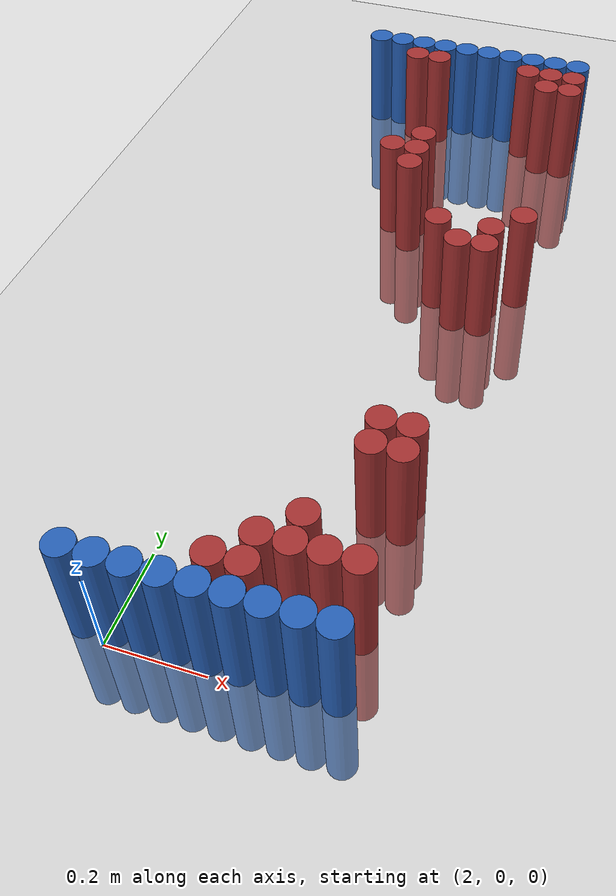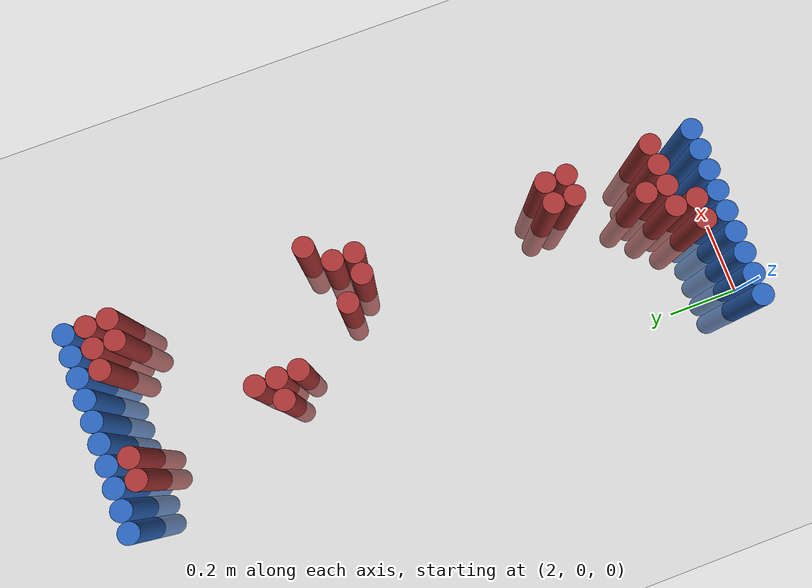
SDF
<sdf version="1.6">
 <world name="default">
  <model name="ground_plane">
   <static>1</static>
   <link name="link">
    <collision name="collision">
     <geometry><plane><normal>0 0 1</normal><size>100 100</size></plane></geometry>
     <surface><friction><ode><mu>100</mu><mu2>50</mu2></ode></friction></surface>
    </collision>
    <visual name="visual">
     <cast_shadows>0</cast_shadows>
     <geometry><plane><normal>0 0 1</normal><size>100 100</size></plane></geometry>
     <material>
      <script><uri>file://media/materials/scripts/gazebo.material</uri><name>Gazebo/Grey</name></script>
     </material>
    </visual>
   </link>
  </model>
  <model name="unit_cylinder_91">
   <static>1</static>
   <pose>1.950000 0.030000 0.000000 0.000000 0.000000 0.000000</pose>
   <link name="link">
    <inertial>
     <mass>1</mass>
     <inertia><ixx>0.145833</ixx><ixy>0</ixy><ixz>0</ixz><iyy>0.145833</iyy><iyz>0</iyz><izz>0.125</izz></inertia>
    </inertial>
    <collision name="collision">
     <geometry><cylinder><radius>0.030000</radius><length>0.5</length></cylinder></geometry>
    </collision>
    <visual name="visual">
     <geometry><cylinder><radius>0.030000</radius><length>0.5</length></cylinder></geometry>
     <material>
      <ambient>0.152000 0.379000 0.720000 1</ambient>
      <diffuse>0.152000 0.379000 0.720000 1</diffuse>
     </material>
     <material>
      <script><name>Gazebo/Grey</name><uri>file://media/materials/scripts/gazebo.material</uri></script>
     </material>
    </visual>
   </link>
  </model>
  <model name="unit_cylinder_92">
   <static>1</static>
   <pose>1.950000 1.770000 0.000000 0.000000 0.000000 0.000000</pose>
   <link name="link">
    <inertial>
     <mass>1</mass>
     <inertia><ixx>0.145833</ixx><ixy>0</ixy><ixz>0</ixz><iyy>0.145833</iyy><iyz>0</iyz><izz>0.125</izz></inertia>
    </inertial>
    <collision name="collision">
     <geometry><cylinder><radius>0.030000</radius><length>0.5</length></cylinder></geometry>
    </collision>
    <visual name="visual">
     <geometry><cylinder><radius>0.030000</radius><length>0.5</length></cylinder></geometry>
     <material>
      <ambient>0.152000 0.379000 0.720000 1</ambient>
      <diffuse>0.152000 0.379000 0.720000 1</diffuse>
     </material>
     <material>
      <script><name>Gazebo/Grey</name><uri>file://media/materials/scripts/gazebo.material</uri></script>
     </material>
    </visual>
   </link>
  </model>
  <model name="unit_cylinder_93">
   <static>1</static>
   <pose>2.010000 0.030000 0.000000 0.000000 0.000000 0.000000</pose>
   <link name="link">
    <inertial>
     <mass>1</mass>
     <inertia><ixx>0.145833</ixx><ixy>0</ixy><ixz>0</ixz><iyy>0.145833</iyy><iyz>0</iyz><izz>0.125</izz></inertia>
    </inertial>
    <collision name="collision">
     <geometry><cylinder><radius>0.030000</radius><length>0.5</length></cylinder></geometry>
    </collision>
    <visual name="visual">
     <geometry><cylinder><radius>0.030000</radius><length>0.5</length></cylinder></geometry>
     <material>
      <ambient>0.152000 0.379000 0.720000 1</ambient>
      <diffuse>0.152000 0.379000 0.720000 1</diffuse>
     </material>
     <material>
      <script><name>Gazebo/Grey</name><uri>file://media/materials/scripts/gazebo.material</uri></script>
     </material>
    </visual>
   </link>
  </model>
  <model name="unit_cylinder_94">
   <static>1</static>
   <pose>2.010000 1.770000 0.000000 0.000000 0.000000 0.000000</pose>
   <link name="link">
    <inertial>
     <mass>1</mass>
     <inertia><ixx>0.145833</ixx><ixy>0</ixy><ixz>0</ixz><iyy>0.145833</iyy><iyz>0</iyz><izz>0.125</izz></inertia>
    </inertial>
    <collision name="collision">
     <geometry><cylinder><radius>0.030000</radius><length>0.5</length></cylinder></geometry>
    </collision>
    <visual name="visual">
     <geometry><cylinder><radius>0.030000</radius><length>0.5</length></cylinder></geometry>
     <material>
      <ambient>0.152000 0.379000 0.720000 1</ambient>
      <diffuse>0.152000 0.379000 0.720000 1</diffuse>
     </material>
     <material>
      <script><name>Gazebo/Grey</name><uri>file://media/materials/scripts/gazebo.material</uri></script>
     </material>
    </visual>
   </link>
  </model>
  <model name="unit_cylinder_95">
   <static>1</static>
   <pose>2.070000 1.770000 0.000000 0.000000 0.000000 0.000000</pose>
   <link name="link">
    <inertial>
     <mass>1</mass>
     <inertia><ixx>0.145833</ixx><ixy>0</ixy><ixz>0</ixz><iyy>0.145833</iyy><iyz>0</iyz><izz>0.125</izz></inertia>
    </inertial>
    <collision name="collision">
     <geometry><cylinder><radius>0.030000</radius><length>0.5</length></cylinder></geometry>
    </collision>
    <visual name="visual">
     <geometry><cylinder><radius>0.030000</radius><length>0.5</length></cylinder></geometry>
     <material>
      <ambient>0.152000 0.379000 0.720000 1</ambient>
      <diffuse>0.152000 0.379000 0.720000 1</diffuse>
     </material>
     <material>
      <script><name>Gazebo/Grey</name><uri>file://media/materials/scripts/gazebo.material</uri></script>
     </material>
    </visual>
   </link>
  </model>
  <model name="unit_cylinder_96">
   <static>1</static>
   <pose>2.130000 1.770000 0.000000 0.000000 0.000000 0.000000</pose>
   <link name="link">
    <inertial>
     <mass>1</mass>
     <inertia><ixx>0.145833</ixx><ixy>0</ixy><ixz>0</ixz><iyy>0.145833</iyy><iyz>0</iyz><izz>0.125</izz></inertia>
    </inertial>
    <collision name="collision">
     <geometry><cylinder><radius>0.030000</radius><length>0.5</length></cylinder></geometry>
    </collision>
    <visual name="visual">
     <geometry><cylinder><radius>0.030000</radius><length>0.5</length></cylinder></geometry>
     <material>
      <ambient>0.152000 0.379000 0.720000 1</ambient>
      <diffuse>0.152000 0.379000 0.720000 1</diffuse>
     </material>
     <material>
      <script><name>Gazebo/Grey</name><uri>file://media/materials/scripts/gazebo.material</uri></script>
     </material>
    </visual>
   </link>
  </model>
  <model name="unit_cylinder_97">
   <static>1</static>
   <pose>2.190000 1.770000 0.000000 0.000000 0.000000 0.000000</pose>
   <link name="link">
    <inertial>
     <mass>1</mass>
     <inertia><ixx>0.145833</ixx><ixy>0</ixy><ixz>0</ixz><iyy>0.145833</iyy><iyz>0</iyz><izz>0.125</izz></inertia>
    </inertial>
    <collision name="collision">
     <geometry><cylinder><radius>0.030000</radius><length>0.5</length></cylinder></geometry>
    </collision>
    <visual name="visual">
     <geometry><cylinder><radius>0.030000</radius><length>0.5</length></cylinder></geometry>
     <material>
      <ambient>0.152000 0.379000 0.720000 1</ambient>
      <diffuse>0.152000 0.379000 0.720000 1</diffuse>
     </material>
     <material>
      <script><name>Gazebo/Grey</name><uri>file://media/materials/scripts/gazebo.material</uri></script>
     </material>
    </visual>
   </link>
  </model>
  <model name="unit_cylinder_98">
   <static>1</static>
   <pose>2.250000 1.770000 0.000000 0.000000 0.000000 0.000000</pose>
   <link name="link">
    <inertial>
     <mass>1</mass>
     <inertia><ixx>0.145833</ixx><ixy>0</ixy><ixz>0</ixz><iyy>0.145833</iyy><iyz>0</iyz><izz>0.125</izz></inertia>
    </inertial>
    <collision name="collision">
     <geometry><cylinder><radius>0.030000</radius><length>0.5</length></cylinder></geometry>
    </collision>
    <visual name="visual">
     <geometry><cylinder><radius>0.030000</radius><length>0.5</length></cylinder></geometry>
     <material>
      <ambient>0.152000 0.379000 0.720000 1</ambient>
      <diffuse>0.152000 0.379000 0.720000 1</diffuse>
     </material>
     <material>
      <script><name>Gazebo/Grey</name><uri>file://media/materials/scripts/gazebo.material</uri></script>
     </material>
    </visual>
   </link>
  </model>
  <model name="unit_cylinder_99">
   <static>1</static>
   <pose>2.310000 1.770000 0.000000 0.000000 0.000000 0.000000</pose>
   <link name="link">
    <inertial>
     <mass>1</mass>
     <inertia><ixx>0.145833</ixx><ixy>0</ixy><ixz>0</ixz><iyy>0.145833</iyy><iyz>0</iyz><izz>0.125</izz></inertia>
    </inertial>
    <collision name="collision">
     <geometry><cylinder><radius>0.030000</radius><length>0.5</length></cylinder></geometry>
    </collision>
    <visual name="visual">
     <geometry><cylinder><radius>0.030000</radius><length>0.5</length></cylinder></geometry>
     <material>
      <ambient>0.152000 0.379000 0.720000 1</ambient>
      <diffuse>0.152000 0.379000 0.720000 1</diffuse>
     </material>
     <material>
      <script><name>Gazebo/Grey</name><uri>file://media/materials/scripts/gazebo.material</uri></script>
     </material>
    </visual>
   </link>
  </model>
  <model name="unit_cylinder_100">
   <static>1</static>
   <pose>2.370000 1.770000 0.000000 0.000000 0.000000 0.000000</pose>
   <link name="link">
    <inertial>
     <mass>1</mass>
     <inertia><ixx>0.145833</ixx><ixy>0</ixy><ixz>0</ixz><iyy>0.145833</iyy><iyz>0</iyz><izz>0.125</izz></inertia>
    </inertial>
    <collision name="collision">
     <geometry><cylinder><radius>0.030000</radius><length>0.5</length></cylinder></geometry>
    </collision>
    <visual name="visual">
     <geometry><cylinder><radius>0.030000</radius><length>0.5</length></cylinder></geometry>
     <material>
      <ambient>0.152000 0.379000 0.720000 1</ambient>
      <diffuse>0.152000 0.379000 0.720000 1</diffuse>
     </material>
     <material>
      <script><name>Gazebo/Grey</name><uri>file://media/materials/scripts/gazebo.material</uri></script>
     </material>
    </visual>
   </link>
  </model>
  <model name="unit_cylinder_101">
   <static>1</static>
   <pose>2.430000 1.770000 0.000000 0.000000 0.000000 0.000000</pose>
   <link name="link">
    <inertial>
     <mass>1</mass>
     <inertia><ixx>0.145833</ixx><ixy>0</ixy><ixz>0</ixz><iyy>0.145833</iyy><iyz>0</iyz><izz>0.125</izz></inertia>
    </inertial>
    <collision name="collision">
     <geometry><cylinder><radius>0.030000</radius><length>0.5</length></cylinder></geometry>
    </collision>
    <visual name="visual">
     <geometry><cylinder><radius>0.030000</radius><length>0.5</length></cylinder></geometry>
     <material>
      <ambient>0.152000 0.379000 0.720000 1</ambient>
      <diffuse>0.152000 0.379000 0.720000 1</diffuse>
     </material>
     <material>
      <script><name>Gazebo/Grey</name><uri>file://media/materials/scripts/gazebo.material</uri></script>
     </material>
    </visual>
   </link>
  </model>
  <model name="unit_cylinder_102">
   <static>1</static>
   <pose>2.490000 1.770000 0.000000 0.000000 0.000000 0.000000</pose>
   <link name="link">
    <inertial>
     <mass>1</mass>
     <inertia><ixx>0.145833</ixx><ixy>0</ixy><ixz>0</ixz><iyy>0.145833</iyy><iyz>0</iyz><izz>0.125</izz></inertia>
    </inertial>
    <collision name="collision">
     <geometry><cylinder><radius>0.030000</radius><length>0.5</length></cylinder></geometry>
    </collision>
    <visual name="visual">
     <geometry><cylinder><radius>0.030000</radius><length>0.5</length></cylinder></geometry>
     <material>
      <ambient>0.152000 0.379000 0.720000 1</ambient>
      <diffuse>0.152000 0.379000 0.720000 1</diffuse>
     </material>
     <material>
      <script><name>Gazebo/Grey</name><uri>file://media/materials/scripts/gazebo.material</uri></script>
     </material>
    </visual>
   </link>
  </model>
  <model name="unit_cylinder_125">
   <static>1</static>
   <pose>2.070000 1.710000 0.000000 0.000000 0.000000 0.000000</pose>
   <link name="link">
    <inertial>
     <mass>1</mass>
     <inertia><ixx>0.145833</ixx><ixy>0</ixy><ixz>0</ixz><iyy>0.145833</iyy><iyz>0</iyz><izz>0.125</izz></inertia>
    </inertial>
    <collision name="collision">
     <geometry><cylinder><radius>0.030000</radius><length>0.5</length></cylinder></geometry>
    </collision>
    <visual name="visual">
     <geometry><cylinder><radius>0.030000</radius><length>0.5</length></cylinder></geometry>
     <material>
      <ambient>0.648000 0.192000 0.192000 1</ambient>
      <diffuse>0.648000 0.192000 0.192000 1</diffuse>
     </material>
     <material>
      <script><name>Gazebo/Grey</name><uri>file://media/materials/scripts/gazebo.material</uri></script>
     </material>
    </visual>
   </link>
  </model>
  <model name="unit_cylinder_126">
   <static>1</static>
   <pose>2.130000 1.710000 0.000000 0.000000 0.000000 0.000000</pose>
   <link name="link">
    <inertial>
     <mass>1</mass>
     <inertia><ixx>0.145833</ixx><ixy>0</ixy><ixz>0</ixz><iyy>0.145833</iyy><iyz>0</iyz><izz>0.125</izz></inertia>
    </inertial>
    <collision name="collision">
     <geometry><cylinder><radius>0.030000</radius><length>0.5</length></cylinder></geometry>
    </collision>
    <visual name="visual">
     <geometry><cylinder><radius>0.030000</radius><length>0.5</length></cylinder></geometry>
     <material>
      <ambient>0.648000 0.192000 0.192000 1</ambient>
      <diffuse>0.648000 0.192000 0.192000 1</diffuse>
     </material>
     <material>
      <script><name>Gazebo/Grey</name><uri>file://media/materials/scripts/gazebo.material</uri></script>
     </material>
    </visual>
   </link>
  </model>
  <model name="unit_cylinder_127">
   <static>1</static>
   <pose>2.370000 1.710000 0.000000 0.000000 0.000000 0.000000</pose>
   <link name="link">
    <inertial>
     <mass>1</mass>
     <inertia><ixx>0.145833</ixx><ixy>0</ixy><ixz>0</ixz><iyy>0.145833</iyy><iyz>0</iyz><izz>0.125</izz></inertia>
    </inertial>
    <collision name="collision">
     <geometry><cylinder><radius>0.030000</radius><length>0.5</length></cylinder></geometry>
    </collision>
    <visual name="visual">
     <geometry><cylinder><radius>0.030000</radius><length>0.5</length></cylinder></geometry>
     <material>
      <ambient>0.648000 0.192000 0.192000 1</ambient>
      <diffuse>0.648000 0.192000 0.192000 1</diffuse>
     </material>
     <material>
      <script><name>Gazebo/Grey</name><uri>file://media/materials/scripts/gazebo.material</uri></script>
     </material>
    </visual>
   </link>
  </model>
  <model name="unit_cylinder_128">
   <static>1</static>
   <pose>2.430000 1.710000 0.000000 0.000000 0.000000 0.000000</pose>
   <link name="link">
    <inertial>
     <mass>1</mass>
     <inertia><ixx>0.145833</ixx><ixy>0</ixy><ixz>0</ixz><iyy>0.145833</iyy><iyz>0</iyz><izz>0.125</izz></inertia>
    </inertial>
    <collision name="collision">
     <geometry><cylinder><radius>0.030000</radius><length>0.5</length></cylinder></geometry>
    </collision>
    <visual name="visual">
     <geometry><cylinder><radius>0.030000</radius><length>0.5</length></cylinder></geometry>
     <material>
      <ambient>0.648000 0.192000 0.192000 1</ambient>
      <diffuse>0.648000 0.192000 0.192000 1</diffuse>
     </material>
     <material>
      <script><name>Gazebo/Grey</name><uri>file://media/materials/scripts/gazebo.material</uri></script>
     </material>
    </visual>
   </link>
  </model>
  <model name="unit_cylinder_129">
   <static>1</static>
   <pose>2.490000 1.710000 0.000000 0.000000 0.000000 0.000000</pose>
   <link name="link">
    <inertial>
     <mass>1</mass>
     <inertia><ixx>0.145833</ixx><ixy>0</ixy><ixz>0</ixz><iyy>0.145833</iyy><iyz>0</iyz><izz>0.125</izz></inertia>
    </inertial>
    <collision name="collision">
     <geometry><cylinder><radius>0.030000</radius><length>0.5</length></cylinder></geometry>
    </collision>
    <visual name="visual">
     <geometry><cylinder><radius>0.030000</radius><length>0.5</length></cylinder></geometry>
     <material>
      <ambient>0.648000 0.192000 0.192000 1</ambient>
      <diffuse>0.648000 0.192000 0.192000 1</diffuse>
     </material>
     <material>
      <script><name>Gazebo/Grey</name><uri>file://media/materials/scripts/gazebo.material</uri></script>
     </material>
    </visual>
   </link>
  </model>
  <model name="unit_cylinder_140">
   <static>1</static>
   <pose>2.430000 1.650000 0.000000 0.000000 0.000000 0.000000</pose>
   <link name="link">
    <inertial>
     <mass>1</mass>
     <inertia><ixx>0.145833</ixx><ixy>0</ixy><ixz>0</ixz><iyy>0.145833</iyy><iyz>0</iyz><izz>0.125</izz></inertia>
    </inertial>
    <collision name="collision">
     <geometry><cylinder><radius>0.030000</radius><length>0.5</length></cylinder></geometry>
    </collision>
    <visual name="visual">
     <geometry><cylinder><radius>0.030000</radius><length>0.5</length></cylinder></geometry>
     <material>
      <ambient>0.648000 0.192000 0.192000 1</ambient>
      <diffuse>0.648000 0.192000 0.192000 1</diffuse>
     </material>
     <material>
      <script><name>Gazebo/Grey</name><uri>file://media/materials/scripts/gazebo.material</uri></script>
     </material>
    </visual>
   </link>
  </model>
  <model name="unit_cylinder_141">
   <static>1</static>
   <pose>2.490000 1.650000 0.000000 0.000000 0.000000 0.000000</pose>
   <link name="link">
    <inertial>
     <mass>1</mass>
     <inertia><ixx>0.145833</ixx><ixy>0</ixy><ixz>0</ixz><iyy>0.145833</iyy><iyz>0</iyz><izz>0.125</izz></inertia>
    </inertial>
    <collision name="collision">
     <geometry><cylinder><radius>0.030000</radius><length>0.5</length></cylinder></geometry>
    </collision>
    <visual name="visual">
     <geometry><cylinder><radius>0.030000</radius><length>0.5</length></cylinder></geometry>
     <material>
      <ambient>0.648000 0.192000 0.192000 1</ambient>
      <diffuse>0.648000 0.192000 0.192000 1</diffuse>
     </material>
     <material>
      <script><name>Gazebo/Grey</name><uri>file://media/materials/scripts/gazebo.material</uri></script>
     </material>
    </visual>
   </link>
  </model>
  <model name="unit_cylinder_171">
   <static>1</static>
   <pose>2.190000 1.350000 0.000000 0.000000 0.000000 0.000000</pose>
   <link name="link">
    <inertial>
     <mass>1</mass>
     <inertia><ixx>0.145833</ixx><ixy>0</ixy><ixz>0</ixz><iyy>0.145833</iyy><iyz>0</iyz><izz>0.125</izz></inertia>
    </inertial>
    <collision name="collision">
     <geometry><cylinder><radius>0.030000</radius><length>0.5</length></cylinder></geometry>
    </collision>
    <visual name="visual">
     <geometry><cylinder><radius>0.030000</radius><length>0.5</length></cylinder></geometry>
     <material>
      <ambient>0.648000 0.192000 0.192000 1</ambient>
      <diffuse>0.648000 0.192000 0.192000 1</diffuse>
     </material>
     <material>
      <script><name>Gazebo/Grey</name><uri>file://media/materials/scripts/gazebo.material</uri></script>
     </material>
    </visual>
   </link>
  </model>
  <model name="unit_cylinder_175">
   <static>1</static>
   <pose>2.130000 1.290000 0.000000 0.000000 0.000000 0.000000</pose>
   <link name="link">
    <inertial>
     <mass>1</mass>
     <inertia><ixx>0.145833</ixx><ixy>0</ixy><ixz>0</ixz><iyy>0.145833</iyy><iyz>0</iyz><izz>0.125</izz></inertia>
    </inertial>
    <collision name="collision">
     <geometry><cylinder><radius>0.030000</radius><length>0.5</length></cylinder></geometry>
    </collision>
    <visual name="visual">
     <geometry><cylinder><radius>0.030000</radius><length>0.5</length></cylinder></geometry>
     <material>
      <ambient>0.648000 0.192000 0.192000 1</ambient>
      <diffuse>0.648000 0.192000 0.192000 1</diffuse>
     </material>
     <material>
      <script><name>Gazebo/Grey</name><uri>file://media/materials/scripts/gazebo.material</uri></script>
     </material>
    </visual>
   </link>
  </model>
  <model name="unit_cylinder_176">
   <static>1</static>
   <pose>2.190000 1.290000 0.000000 0.000000 0.000000 0.000000</pose>
   <link name="link">
    <inertial>
     <mass>1</mass>
     <inertia><ixx>0.145833</ixx><ixy>0</ixy><ixz>0</ixz><iyy>0.145833</iyy><iyz>0</iyz><izz>0.125</izz></inertia>
    </inertial>
    <collision name="collision">
     <geometry><cylinder><radius>0.030000</radius><length>0.5</length></cylinder></geometry>
    </collision>
    <visual name="visual">
     <geometry><cylinder><radius>0.030000</radius><length>0.5</length></cylinder></geometry>
     <material>
      <ambient>0.648000 0.192000 0.192000 1</ambient>
      <diffuse>0.648000 0.192000 0.192000 1</diffuse>
     </material>
     <material>
      <script><name>Gazebo/Grey</name><uri>file://media/materials/scripts/gazebo.material</uri></script>
     </material>
    </visual>
   </link>
  </model>
  <model name="unit_cylinder_183">
   <static>1</static>
   <pose>2.190000 1.230000 0.000000 0.000000 0.000000 0.000000</pose>
   <link name="link">
    <inertial>
     <mass>1</mass>
     <inertia><ixx>0.145833</ixx><ixy>0</ixy><ixz>0</ixz><iyy>0.145833</iyy><iyz>0</iyz><izz>0.125</izz></inertia>
    </inertial>
    <collision name="collision">
     <geometry><cylinder><radius>0.030000</radius><length>0.5</length></cylinder></geometry>
    </collision>
    <visual name="visual">
     <geometry><cylinder><radius>0.030000</radius><length>0.5</length></cylinder></geometry>
     <material>
      <ambient>0.648000 0.192000 0.192000 1</ambient>
      <diffuse>0.648000 0.192000 0.192000 1</diffuse>
     </material>
     <material>
      <script><name>Gazebo/Grey</name><uri>file://media/materials/scripts/gazebo.material</uri></script>
     </material>
    </visual>
   </link>
  </model>
  <model name="unit_cylinder_185">
   <static>1</static>
   <pose>2.490000 1.110000 0.000000 0.000000 0.000000 0.000000</pose>
   <link name="link">
    <inertial>
     <mass>1</mass>
     <inertia><ixx>0.145833</ixx><ixy>0</ixy><ixz>0</ixz><iyy>0.145833</iyy><iyz>0</iyz><izz>0.125</izz></inertia>
    </inertial>
    <collision name="collision">
     <geometry><cylinder><radius>0.030000</radius><length>0.5</length></cylinder></geometry>
    </collision>
    <visual name="visual">
     <geometry><cylinder><radius>0.030000</radius><length>0.5</length></cylinder></geometry>
     <material>
      <ambient>0.648000 0.192000 0.192000 1</ambient>
      <diffuse>0.648000 0.192000 0.192000 1</diffuse>
     </material>
     <material>
      <script><name>Gazebo/Grey</name><uri>file://media/materials/scripts/gazebo.material</uri></script>
     </material>
    </visual>
   </link>
  </model>
  <model name="unit_cylinder_186">
   <static>1</static>
   <pose>2.310000 1.050000 0.000000 0.000000 0.000000 0.000000</pose>
   <link name="link">
    <inertial>
     <mass>1</mass>
     <inertia><ixx>0.145833</ixx><ixy>0</ixy><ixz>0</ixz><iyy>0.145833</iyy><iyz>0</iyz><izz>0.125</izz></inertia>
    </inertial>
    <collision name="collision">
     <geometry><cylinder><radius>0.030000</radius><length>0.5</length></cylinder></geometry>
    </collision>
    <visual name="visual">
     <geometry><cylinder><radius>0.030000</radius><length>0.5</length></cylinder></geometry>
     <material>
      <ambient>0.648000 0.192000 0.192000 1</ambient>
      <diffuse>0.648000 0.192000 0.192000 1</diffuse>
     </material>
     <material>
      <script><name>Gazebo/Grey</name><uri>file://media/materials/scripts/gazebo.material</uri></script>
     </material>
    </visual>
   </link>
  </model>
  <model name="unit_cylinder_187">
   <static>1</static>
   <pose>2.430000 1.050000 0.000000 0.000000 0.000000 0.000000</pose>
   <link name="link">
    <inertial>
     <mass>1</mass>
     <inertia><ixx>0.145833</ixx><ixy>0</ixy><ixz>0</ixz><iyy>0.145833</iyy><iyz>0</iyz><izz>0.125</izz></inertia>
    </inertial>
    <collision name="collision">
     <geometry><cylinder><radius>0.030000</radius><length>0.5</length></cylinder></geometry>
    </collision>
    <visual name="visual">
     <geometry><cylinder><radius>0.030000</radius><length>0.5</length></cylinder></geometry>
     <material>
      <ambient>0.648000 0.192000 0.192000 1</ambient>
      <diffuse>0.648000 0.192000 0.192000 1</diffuse>
     </material>
     <material>
      <script><name>Gazebo/Grey</name><uri>file://media/materials/scripts/gazebo.material</uri></script>
     </material>
    </visual>
   </link>
  </model>
  <model name="unit_cylinder_192">
   <static>1</static>
   <pose>2.370000 0.990000 0.000000 0.000000 0.000000 0.000000</pose>
   <link name="link">
    <inertial>
     <mass>1</mass>
     <inertia><ixx>0.145833</ixx><ixy>0</ixy><ixz>0</ixz><iyy>0.145833</iyy><iyz>0</iyz><izz>0.125</izz></inertia>
    </inertial>
    <collision name="collision">
     <geometry><cylinder><radius>0.030000</radius><length>0.5</length></cylinder></geometry>
    </collision>
    <visual name="visual">
     <geometry><cylinder><radius>0.030000</radius><length>0.5</length></cylinder></geometry>
     <material>
      <ambient>0.648000 0.192000 0.192000 1</ambient>
      <diffuse>0.648000 0.192000 0.192000 1</diffuse>
     </material>
     <material>
      <script><name>Gazebo/Grey</name><uri>file://media/materials/scripts/gazebo.material</uri></script>
     </material>
    </visual>
   </link>
  </model>
  <model name="unit_cylinder_193">
   <static>1</static>
   <pose>2.430000 0.990000 0.000000 0.000000 0.000000 0.000000</pose>
   <link name="link">
    <inertial>
     <mass>1</mass>
     <inertia><ixx>0.145833</ixx><ixy>0</ixy><ixz>0</ixz><iyy>0.145833</iyy><iyz>0</iyz><izz>0.125</izz></inertia>
    </inertial>
    <collision name="collision">
     <geometry><cylinder><radius>0.030000</radius><length>0.5</length></cylinder></geometry>
    </collision>
    <visual name="visual">
     <geometry><cylinder><radius>0.030000</radius><length>0.5</length></cylinder></geometry>
     <material>
      <ambient>0.648000 0.192000 0.192000 1</ambient>
      <diffuse>0.648000 0.192000 0.192000 1</diffuse>
     </material>
     <material>
      <script><name>Gazebo/Grey</name><uri>file://media/materials/scripts/gazebo.material</uri></script>
     </material>
    </visual>
   </link>
  </model>
  <model name="unit_cylinder_208">
   <static>1</static>
   <pose>2.370000 0.450000 0.000000 0.000000 0.000000 0.000000</pose>
   <link name="link">
    <inertial>
     <mass>1</mass>
     <inertia><ixx>0.145833</ixx><ixy>0</ixy><ixz>0</ixz><iyy>0.145833</iyy><iyz>0</iyz><izz>0.125</izz></inertia>
    </inertial>
    <collision name="collision">
     <geometry><cylinder><radius>0.030000</radius><length>0.5</length></cylinder></geometry>
    </collision>
    <visual name="visual">
     <geometry><cylinder><radius>0.030000</radius><length>0.5</length></cylinder></geometry>
     <material>
      <ambient>0.648000 0.192000 0.192000 1</ambient>
      <diffuse>0.648000 0.192000 0.192000 1</diffuse>
     </material>
     <material>
      <script><name>Gazebo/Grey</name><uri>file://media/materials/scripts/gazebo.material</uri></script>
     </material>
    </visual>
   </link>
  </model>
  <model name="unit_cylinder_209">
   <static>1</static>
   <pose>2.430000 0.450000 0.000000 0.000000 0.000000 0.000000</pose>
   <link name="link">
    <inertial>
     <mass>1</mass>
     <inertia><ixx>0.145833</ixx><ixy>0</ixy><ixz>0</ixz><iyy>0.145833</iyy><iyz>0</iyz><izz>0.125</izz></inertia>
    </inertial>
    <collision name="collision">
     <geometry><cylinder><radius>0.030000</radius><length>0.5</length></cylinder></geometry>
    </collision>
    <visual name="visual">
     <geometry><cylinder><radius>0.030000</radius><length>0.5</length></cylinder></geometry>
     <material>
      <ambient>0.648000 0.192000 0.192000 1</ambient>
      <diffuse>0.648000 0.192000 0.192000 1</diffuse>
     </material>
     <material>
      <script><name>Gazebo/Grey</name><uri>file://media/materials/scripts/gazebo.material</uri></script>
     </material>
    </visual>
   </link>
  </model>
  <model name="unit_cylinder_213">
   <static>1</static>
   <pose>2.370000 0.390000 0.000000 0.000000 0.000000 0.000000</pose>
   <link name="link">
    <inertial>
     <mass>1</mass>
     <inertia><ixx>0.145833</ixx><ixy>0</ixy><ixz>0</ixz><iyy>0.145833</iyy><iyz>0</iyz><izz>0.125</izz></inertia>
    </inertial>
    <collision name="collision">
     <geometry><cylinder><radius>0.030000</radius><length>0.5</length></cylinder></geometry>
    </collision>
    <visual name="visual">
     <geometry><cylinder><radius>0.030000</radius><length>0.5</length></cylinder></geometry>
     <material>
      <ambient>0.648000 0.192000 0.192000 1</ambient>
      <diffuse>0.648000 0.192000 0.192000 1</diffuse>
     </material>
     <material>
      <script><name>Gazebo/Grey</name><uri>file://media/materials/scripts/gazebo.material</uri></script>
     </material>
    </visual>
   </link>
  </model>
  <model name="unit_cylinder_214">
   <static>1</static>
   <pose>2.430000 0.390000 0.000000 0.000000 0.000000 0.000000</pose>
   <link name="link">
    <inertial>
     <mass>1</mass>
     <inertia><ixx>0.145833</ixx><ixy>0</ixy><ixz>0</ixz><iyy>0.145833</iyy><iyz>0</iyz><izz>0.125</izz></inertia>
    </inertial>
    <collision name="collision">
     <geometry><cylinder><radius>0.030000</radius><length>0.5</length></cylinder></geometry>
    </collision>
    <visual name="visual">
     <geometry><cylinder><radius>0.030000</radius><length>0.5</length></cylinder></geometry>
     <material>
      <ambient>0.648000 0.192000 0.192000 1</ambient>
      <diffuse>0.648000 0.192000 0.192000 1</diffuse>
     </material>
     <material>
      <script><name>Gazebo/Grey</name><uri>file://media/materials/scripts/gazebo.material</uri></script>
     </material>
    </visual>
   </link>
  </model>
  <model name="unit_cylinder_229">
   <static>1</static>
   <pose>2.310000 0.210000 0.000000 0.000000 0.000000 0.000000</pose>
   <link name="link">
    <inertial>
     <mass>1</mass>
     <inertia><ixx>0.145833</ixx><ixy>0</ixy><ixz>0</ixz><iyy>0.145833</iyy><iyz>0</iyz><izz>0.125</izz></inertia>
    </inertial>
    <collision name="collision">
     <geometry><cylinder><radius>0.030000</radius><length>0.5</length></cylinder></geometry>
    </collision>
    <visual name="visual">
     <geometry><cylinder><radius>0.030000</radius><length>0.5</length></cylinder></geometry>
     <material>
      <ambient>0.648000 0.192000 0.192000 1</ambient>
      <diffuse>0.648000 0.192000 0.192000 1</diffuse>
     </material>
     <material>
      <script><name>Gazebo/Grey</name><uri>file://media/materials/scripts/gazebo.material</uri></script>
     </material>
    </visual>
   </link>
  </model>
  <model name="unit_cylinder_233">
   <static>1</static>
   <pose>2.250000 0.150000 0.000000 0.000000 0.000000 0.000000</pose>
   <link name="link">
    <inertial>
     <mass>1</mass>
     <inertia><ixx>0.145833</ixx><ixy>0</ixy><ixz>0</ixz><iyy>0.145833</iyy><iyz>0</iyz><izz>0.125</izz></inertia>
    </inertial>
    <collision name="collision">
     <geometry><cylinder><radius>0.030000</radius><length>0.5</length></cylinder></geometry>
    </collision>
    <visual name="visual">
     <geometry><cylinder><radius>0.030000</radius><length>0.5</length></cylinder></geometry>
     <material>
      <ambient>0.648000 0.192000 0.192000 1</ambient>
      <diffuse>0.648000 0.192000 0.192000 1</diffuse>
     </material>
     <material>
      <script><name>Gazebo/Grey</name><uri>file://media/materials/scripts/gazebo.material</uri></script>
     </material>
    </visual>
   </link>
  </model>
  <model name="unit_cylinder_234">
   <static>1</static>
   <pose>2.310000 0.150000 0.000000 0.000000 0.000000 0.000000</pose>
   <link name="link">
    <inertial>
     <mass>1</mass>
     <inertia><ixx>0.145833</ixx><ixy>0</ixy><ixz>0</ixz><iyy>0.145833</iyy><iyz>0</iyz><izz>0.125</izz></inertia>
    </inertial>
    <collision name="collision">
     <geometry><cylinder><radius>0.030000</radius><length>0.5</length></cylinder></geometry>
    </collision>
    <visual name="visual">
     <geometry><cylinder><radius>0.030000</radius><length>0.5</length></cylinder></geometry>
     <material>
      <ambient>0.648000 0.192000 0.192000 1</ambient>
      <diffuse>0.648000 0.192000 0.192000 1</diffuse>
     </material>
     <material>
      <script><name>Gazebo/Grey</name><uri>file://media/materials/scripts/gazebo.material</uri></script>
     </material>
    </visual>
   </link>
  </model>
  <model name="unit_cylinder_235">
   <static>1</static>
   <pose>2.370000 0.150000 0.000000 0.000000 0.000000 0.000000</pose>
   <link name="link">
    <inertial>
     <mass>1</mass>
     <inertia><ixx>0.145833</ixx><ixy>0</ixy><ixz>0</ixz><iyy>0.145833</iyy><iyz>0</iyz><izz>0.125</izz></inertia>
    </inertial>
    <collision name="collision">
     <geometry><cylinder><radius>0.030000</radius><length>0.5</length></cylinder></geometry>
    </collision>
    <visual name="visual">
     <geometry><cylinder><radius>0.030000</radius><length>0.5</length></cylinder></geometry>
     <material>
      <ambient>0.648000 0.192000 0.192000 1</ambient>
      <diffuse>0.648000 0.192000 0.192000 1</diffuse>
     </material>
     <material>
      <script><name>Gazebo/Grey</name><uri>file://media/materials/scripts/gazebo.material</uri></script>
     </material>
    </visual>
   </link>
  </model>
  <model name="unit_cylinder_236">
   <static>1</static>
   <pose>2.430000 0.150000 0.000000 0.000000 0.000000 0.000000</pose>
   <link name="link">
    <inertial>
     <mass>1</mass>
     <inertia><ixx>0.145833</ixx><ixy>0</ixy><ixz>0</ixz><iyy>0.145833</iyy><iyz>0</iyz><izz>0.125</izz></inertia>
    </inertial>
    <collision name="collision">
     <geometry><cylinder><radius>0.030000</radius><length>0.5</length></cylinder></geometry>
    </collision>
    <visual name="visual">
     <geometry><cylinder><radius>0.030000</radius><length>0.5</length></cylinder></geometry>
     <material>
      <ambient>0.648000 0.192000 0.192000 1</ambient>
      <diffuse>0.648000 0.192000 0.192000 1</diffuse>
     </material>
     <material>
      <script><name>Gazebo/Grey</name><uri>file://media/materials/scripts/gazebo.material</uri></script>
     </material>
    </visual>
   </link>
  </model>
  <model name="unit_cylinder_238">
   <static>1</static>
   <pose>2.190000 0.090000 0.000000 0.000000 0.000000 0.000000</pose>
   <link name="link">
    <inertial>
     <mass>1</mass>
     <inertia><ixx>0.145833</ixx><ixy>0</ixy><ixz>0</ixz><iyy>0.145833</iyy><iyz>0</iyz><izz>0.125</izz></inertia>
    </inertial>
    <collision name="collision">
     <geometry><cylinder><radius>0.030000</radius><length>0.5</length></cylinder></geometry>
    </collision>
    <visual name="visual">
     <geometry><cylinder><radius>0.030000</radius><length>0.5</length></cylinder></geometry>
     <material>
      <ambient>0.648000 0.192000 0.192000 1</ambient>
      <diffuse>0.648000 0.192000 0.192000 1</diffuse>
     </material>
     <material>
      <script><name>Gazebo/Grey</name><uri>file://media/materials/scripts/gazebo.material</uri></script>
     </material>
    </visual>
   </link>
  </model>
  <model name="unit_cylinder_239">
   <static>1</static>
   <pose>2.250000 0.090000 0.000000 0.000000 0.000000 0.000000</pose>
   <link name="link">
    <inertial>
     <mass>1</mass>
     <inertia><ixx>0.145833</ixx><ixy>0</ixy><ixz>0</ixz><iyy>0.145833</iyy><iyz>0</iyz><izz>0.125</izz></inertia>
    </inertial>
    <collision name="collision">
     <geometry><cylinder><radius>0.030000</radius><length>0.5</length></cylinder></geometry>
    </collision>
    <visual name="visual">
     <geometry><cylinder><radius>0.030000</radius><length>0.5</length></cylinder></geometry>
     <material>
      <ambient>0.648000 0.192000 0.192000 1</ambient>
      <diffuse>0.648000 0.192000 0.192000 1</diffuse>
     </material>
     <material>
      <script><name>Gazebo/Grey</name><uri>file://media/materials/scripts/gazebo.material</uri></script>
     </material>
    </visual>
   </link>
  </model>
  <model name="unit_cylinder_244">
   <static>1</static>
   <pose>2.070000 0.030000 0.000000 0.000000 0.000000 0.000000</pose>
   <link name="link">
    <inertial>
     <mass>1</mass>
     <inertia><ixx>0.145833</ixx><ixy>0</ixy><ixz>0</ixz><iyy>0.145833</iyy><iyz>0</iyz><izz>0.125</izz></inertia>
    </inertial>
    <collision name="collision">
     <geometry><cylinder><radius>0.030000</radius><length>0.5</length></cylinder></geometry>
    </collision>
    <visual name="visual">
     <geometry><cylinder><radius>0.030000</radius><length>0.5</length></cylinder></geometry>
     <material>
      <ambient>0.152000 0.379000 0.720000 1</ambient>
      <diffuse>0.152000 0.379000 0.720000 1</diffuse>
     </material>
     <material>
      <script><name>Gazebo/Grey</name><uri>file://media/materials/scripts/gazebo.material</uri></script>
     </material>
    </visual>
   </link>
  </model>
  <model name="unit_cylinder_245">
   <static>1</static>
   <pose>2.130000 0.030000 0.000000 0.000000 0.000000 0.000000</pose>
   <link name="link">
    <inertial>
     <mass>1</mass>
     <inertia><ixx>0.145833</ixx><ixy>0</ixy><ixz>0</ixz><iyy>0.145833</iyy><iyz>0</iyz><izz>0.125</izz></inertia>
    </inertial>
    <collision name="collision">
     <geometry><cylinder><radius>0.030000</radius><length>0.5</length></cylinder></geometry>
    </collision>
    <visual name="visual">
     <geometry><cylinder><radius>0.030000</radius><length>0.5</length></cylinder></geometry>
     <material>
      <ambient>0.152000 0.379000 0.720000 1</ambient>
      <diffuse>0.152000 0.379000 0.720000 1</diffuse>
     </material>
     <material>
      <script><name>Gazebo/Grey</name><uri>file://media/materials/scripts/gazebo.material</uri></script>
     </material>
    </visual>
   </link>
  </model>
  <model name="unit_cylinder_246">
   <static>1</static>
   <pose>2.190000 0.030000 0.000000 0.000000 0.000000 0.000000</pose>
   <link name="link">
    <inertial>
     <mass>1</mass>
     <inertia><ixx>0.145833</ixx><ixy>0</ixy><ixz>0</ixz><iyy>0.145833</iyy><iyz>0</iyz><izz>0.125</izz></inertia>
    </inertial>
    <collision name="collision">
     <geometry><cylinder><radius>0.030000</radius><length>0.5</length></cylinder></geometry>
    </collision>
    <visual name="visual">
     <geometry><cylinder><radius>0.030000</radius><length>0.5</length></cylinder></geometry>
     <material>
      <ambient>0.152000 0.379000 0.720000 1</ambient>
      <diffuse>0.152000 0.379000 0.720000 1</diffuse>
     </material>
     <material>
      <script><name>Gazebo/Grey</name><uri>file://media/materials/scripts/gazebo.material</uri></script>
     </material>
    </visual>
   </link>
  </model>
  <model name="unit_cylinder_247">
   <static>1</static>
   <pose>2.250000 0.030000 0.000000 0.000000 0.000000 0.000000</pose>
   <link name="link">
    <inertial>
     <mass>1</mass>
     <inertia><ixx>0.145833</ixx><ixy>0</ixy><ixz>0</ixz><iyy>0.145833</iyy><iyz>0</iyz><izz>0.125</izz></inertia>
    </inertial>
    <collision name="collision">
     <geometry><cylinder><radius>0.030000</radius><length>0.5</length></cylinder></geometry>
    </collision>
    <visual name="visual">
     <geometry><cylinder><radius>0.030000</radius><length>0.5</length></cylinder></geometry>
     <material>
      <ambient>0.152000 0.379000 0.720000 1</ambient>
      <diffuse>0.152000 0.379000 0.720000 1</diffuse>
     </material>
     <material>
      <script><name>Gazebo/Grey</name><uri>file://media/materials/scripts/gazebo.material</uri></script>
     </material>
    </visual>
   </link>
  </model>
  <model name="unit_cylinder_248">
   <static>1</static>
   <pose>2.310000 0.030000 0.000000 0.000000 0.000000 0.000000</pose>
   <link name="link">
    <inertial>
     <mass>1</mass>
     <inertia><ixx>0.145833</ixx><ixy>0</ixy><ixz>0</ixz><iyy>0.145833</iyy><iyz>0</iyz><izz>0.125</izz></inertia>
    </inertial>
    <collision name="collision">
     <geometry><cylinder><radius>0.030000</radius><length>0.5</length></cylinder></geometry>
    </collision>
    <visual name="visual">
     <geometry><cylinder><radius>0.030000</radius><length>0.5</length></cylinder></geometry>
     <material>
      <ambient>0.152000 0.379000 0.720000 1</ambient>
      <diffuse>0.152000 0.379000 0.720000 1</diffuse>
     </material>
     <material>
      <script><name>Gazebo/Grey</name><uri>file://media/materials/scripts/gazebo.material</uri></script>
     </material>
    </visual>
   </link>
  </model>
  <model name="unit_cylinder_249">
   <static>1</static>
   <pose>2.370000 0.030000 0.000000 0.000000 0.000000 0.000000</pose>
   <link name="link">
    <inertial>
     <mass>1</mass>
     <inertia><ixx>0.145833</ixx><ixy>0</ixy><ixz>0</ixz><iyy>0.145833</iyy><iyz>0</iyz><izz>0.125</izz></inertia>
    </inertial>
    <collision name="collision">
     <geometry><cylinder><radius>0.030000</radius><length>0.5</length></cylinder></geometry>
    </collision>
    <visual name="visual">
     <geometry><cylinder><radius>0.030000</radius><length>0.5</length></cylinder></geometry>
     <material>
      <ambient>0.152000 0.379000 0.720000 1</ambient>
      <diffuse>0.152000 0.379000 0.720000 1</diffuse>
     </material>
     <material>
      <script><name>Gazebo/Grey</name><uri>file://media/materials/scripts/gazebo.material</uri></script>
     </material>
    </visual>
   </link>
  </model>
  <model name="unit_cylinder_250">
   <static>1</static>
   <pose>2.430000 0.030000 0.000000 0.000000 0.000000 0.000000</pose>
   <link name="link">
    <inertial>
     <mass>1</mass>
     <inertia><ixx>0.145833</ixx><ixy>0</ixy><ixz>0</ixz><iyy>0.145833</iyy><iyz>0</iyz><izz>0.125</izz></inertia>
    </inertial>
    <collision name="collision">
     <geometry><cylinder><radius>0.030000</radius><length>0.5</length></cylinder></geometry>
    </collision>
    <visual name="visual">
     <geometry><cylinder><radius>0.030000</radius><length>0.5</length></cylinder></geometry>
     <material>
      <ambient>0.152000 0.379000 0.720000 1</ambient>
      <diffuse>0.152000 0.379000 0.720000 1</diffuse>
     </material>
     <material>
      <script><name>Gazebo/Grey</name><uri>file://media/materials/scripts/gazebo.material</uri></script>
     </material>
    </visual>
   </link>
  </model>
 </world>
</sdf>
